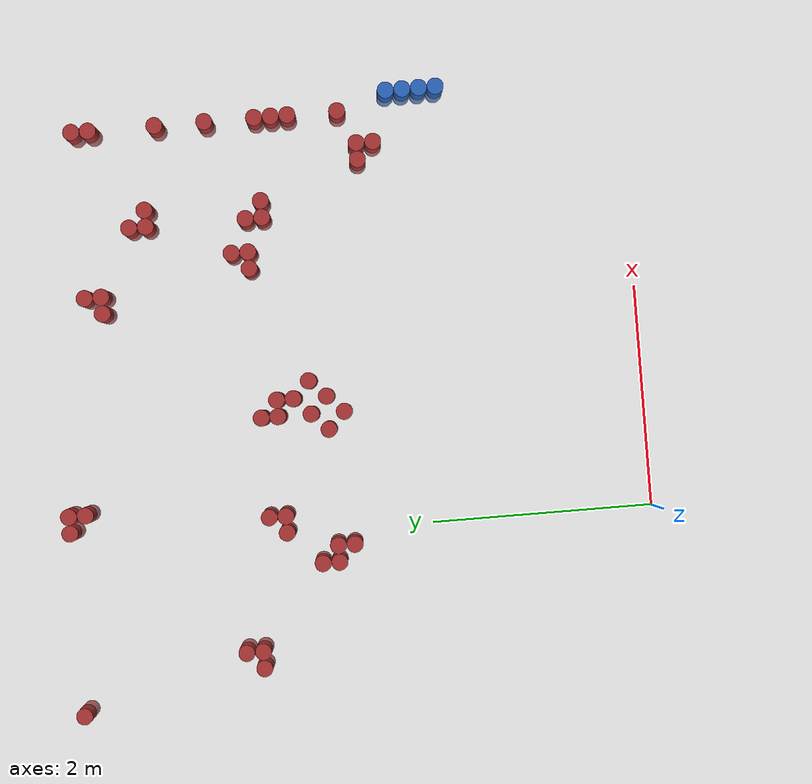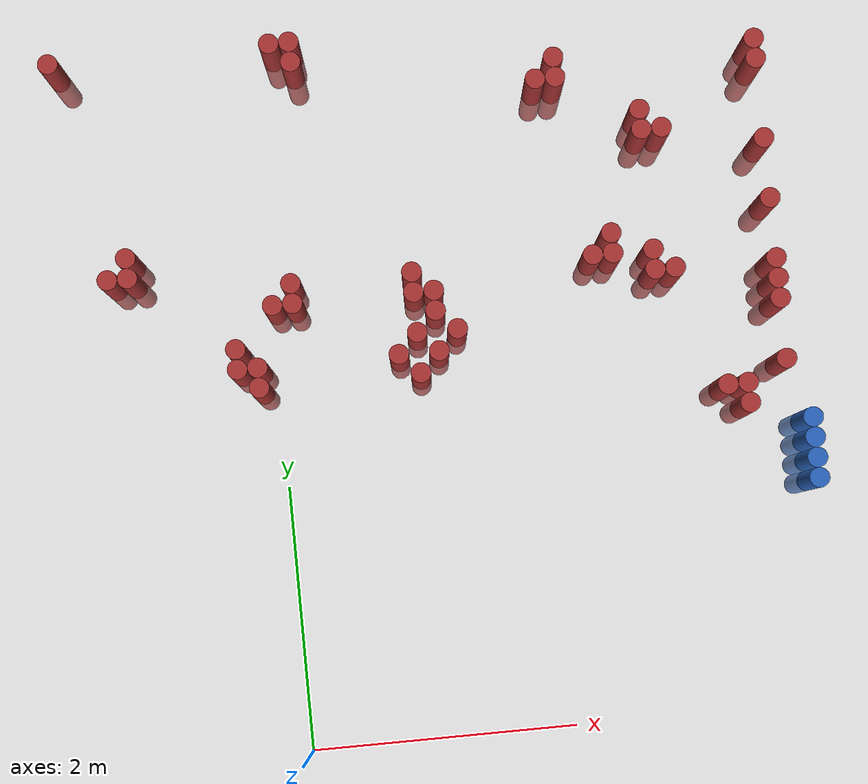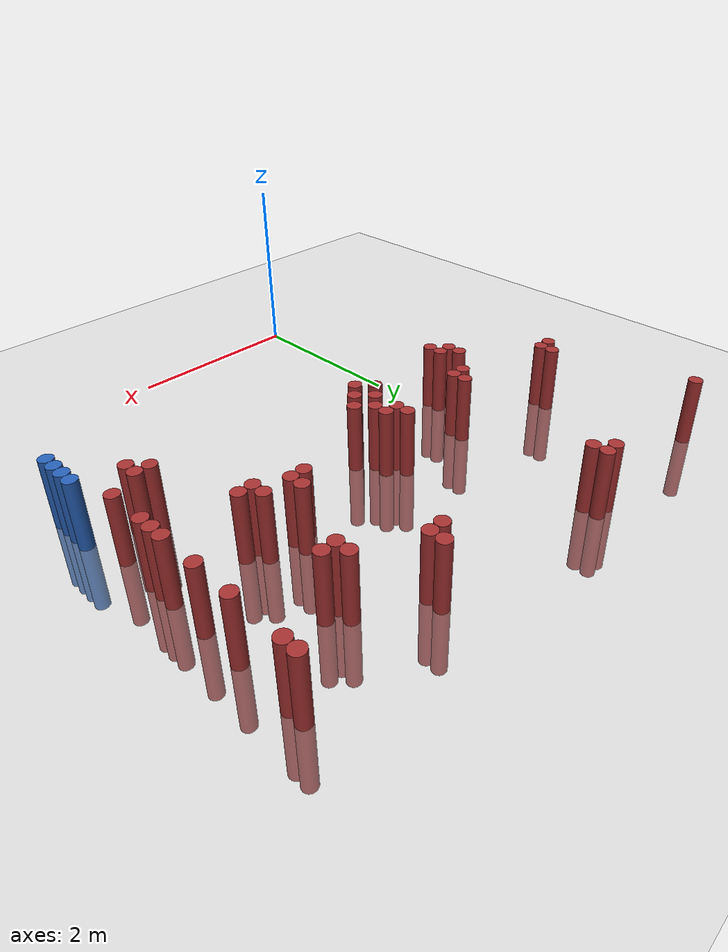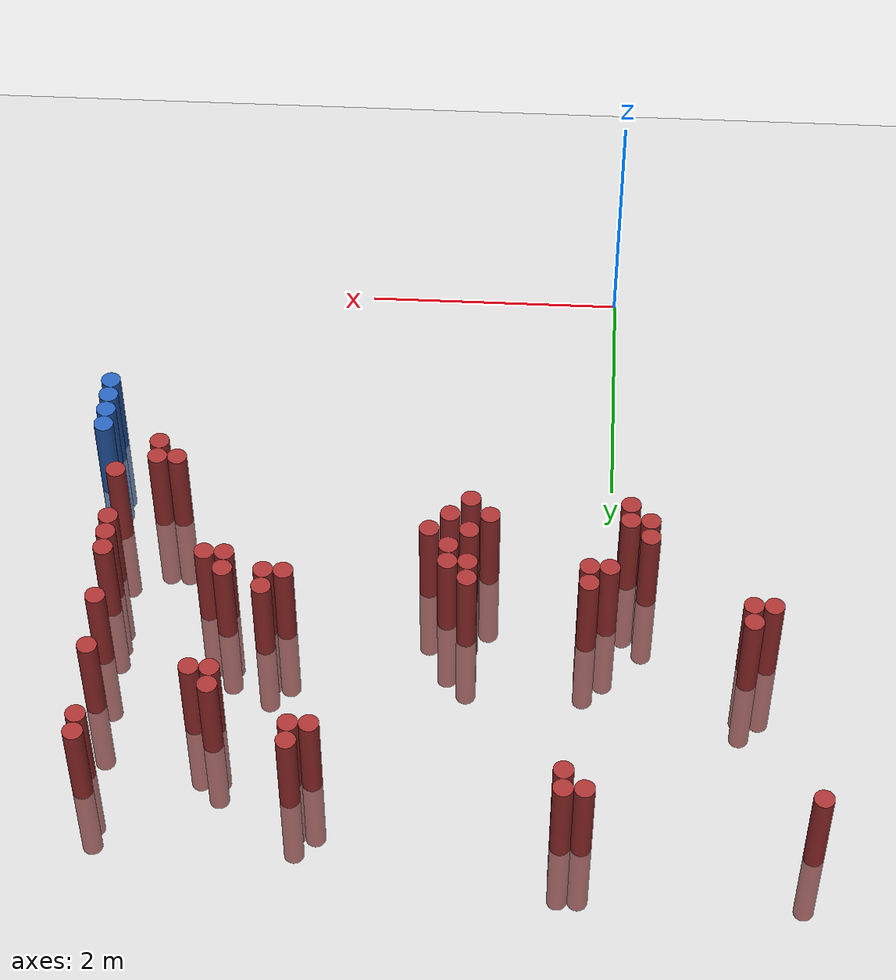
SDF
<sdf version="1.6">
 <world name="default">
  <model name="ground_plane">
   <static>1</static>
   <link name="link">
    <collision name="collision">
     <geometry><plane><normal>0 0 1</normal><size>100 100</size></plane></geometry>
     <surface><friction><ode><mu>100</mu><mu2>50</mu2></ode></friction></surface>
    </collision>
    <visual name="visual">
     <cast_shadows>0</cast_shadows>
     <geometry><plane><normal>0 0 1</normal><size>100 100</size></plane></geometry>
     <material>
      <script><uri>file://media/materials/scripts/gazebo.material</uri><name>Gazebo/Grey</name></script>
     </material>
    </visual>
   </link>
  </model>
  <model name="unit_cylinder_136">
   <static>1</static>
   <pose>3.925000 1.675000 0.000000 0.000000 0.000000 0.000000</pose>
   <link name="link">
    <inertial>
     <mass>1</mass>
     <inertia><ixx>0.145833</ixx><ixy>0</ixy><ixz>0</ixz><iyy>0.145833</iyy><iyz>0</iyz><izz>0.125</izz></inertia>
    </inertial>
    <collision name="collision">
     <geometry><cylinder><radius>0.075000</radius><length>1.5</length></cylinder></geometry>
    </collision>
    <visual name="visual">
     <geometry><cylinder><radius>0.075000</radius><length>1.5</length></cylinder></geometry>
     <material>
      <ambient>0.152000 0.379000 0.720000 1</ambient>
      <diffuse>0.152000 0.379000 0.720000 1</diffuse>
     </material>
     <material>
      <script><name>Gazebo/Grey</name><uri>file://media/materials/scripts/gazebo.material</uri></script>
     </material>
    </visual>
   </link>
  </model>
  <model name="unit_cylinder_138">
   <static>1</static>
   <pose>3.925000 1.825000 0.000000 0.000000 0.000000 0.000000</pose>
   <link name="link">
    <inertial>
     <mass>1</mass>
     <inertia><ixx>0.145833</ixx><ixy>0</ixy><ixz>0</ixz><iyy>0.145833</iyy><iyz>0</iyz><izz>0.125</izz></inertia>
    </inertial>
    <collision name="collision">
     <geometry><cylinder><radius>0.075000</radius><length>1.5</length></cylinder></geometry>
    </collision>
    <visual name="visual">
     <geometry><cylinder><radius>0.075000</radius><length>1.5</length></cylinder></geometry>
     <material>
      <ambient>0.152000 0.379000 0.720000 1</ambient>
      <diffuse>0.152000 0.379000 0.720000 1</diffuse>
     </material>
     <material>
      <script><name>Gazebo/Grey</name><uri>file://media/materials/scripts/gazebo.material</uri></script>
     </material>
    </visual>
   </link>
  </model>
  <model name="unit_cylinder_140">
   <static>1</static>
   <pose>3.925000 1.975000 0.000000 0.000000 0.000000 0.000000</pose>
   <link name="link">
    <inertial>
     <mass>1</mass>
     <inertia><ixx>0.145833</ixx><ixy>0</ixy><ixz>0</ixz><iyy>0.145833</iyy><iyz>0</iyz><izz>0.125</izz></inertia>
    </inertial>
    <collision name="collision">
     <geometry><cylinder><radius>0.075000</radius><length>1.5</length></cylinder></geometry>
    </collision>
    <visual name="visual">
     <geometry><cylinder><radius>0.075000</radius><length>1.5</length></cylinder></geometry>
     <material>
      <ambient>0.152000 0.379000 0.720000 1</ambient>
      <diffuse>0.152000 0.379000 0.720000 1</diffuse>
     </material>
     <material>
      <script><name>Gazebo/Grey</name><uri>file://media/materials/scripts/gazebo.material</uri></script>
     </material>
    </visual>
   </link>
  </model>
  <model name="unit_cylinder_142">
   <static>1</static>
   <pose>3.925000 2.125000 0.000000 0.000000 0.000000 0.000000</pose>
   <link name="link">
    <inertial>
     <mass>1</mass>
     <inertia><ixx>0.145833</ixx><ixy>0</ixy><ixz>0</ixz><iyy>0.145833</iyy><iyz>0</iyz><izz>0.125</izz></inertia>
    </inertial>
    <collision name="collision">
     <geometry><cylinder><radius>0.075000</radius><length>1.5</length></cylinder></geometry>
    </collision>
    <visual name="visual">
     <geometry><cylinder><radius>0.075000</radius><length>1.5</length></cylinder></geometry>
     <material>
      <ambient>0.152000 0.379000 0.720000 1</ambient>
      <diffuse>0.152000 0.379000 0.720000 1</diffuse>
     </material>
     <material>
      <script><name>Gazebo/Grey</name><uri>file://media/materials/scripts/gazebo.material</uri></script>
     </material>
    </visual>
   </link>
  </model>
  <model name="unit_cylinder_316">
   <static>1</static>
   <pose>-1.475000 5.275000 0.000000 0.000000 0.000000 0.000000</pose>
   <link name="link">
    <inertial>
     <mass>1</mass>
     <inertia><ixx>0.145833</ixx><ixy>0</ixy><ixz>0</ixz><iyy>0.145833</iyy><iyz>0</iyz><izz>0.125</izz></inertia>
    </inertial>
    <collision name="collision">
     <geometry><cylinder><radius>0.075000</radius><length>1.5</length></cylinder></geometry>
    </collision>
    <visual name="visual">
     <geometry><cylinder><radius>0.075000</radius><length>1.5</length></cylinder></geometry>
     <material>
      <ambient>0.648000 0.192000 0.192000 1</ambient>
      <diffuse>0.648000 0.192000 0.192000 1</diffuse>
     </material>
     <material>
      <script><name>Gazebo/Grey</name><uri>file://media/materials/scripts/gazebo.material</uri></script>
     </material>
    </visual>
   </link>
  </model>
  <model name="unit_cylinder_318">
   <static>1</static>
   <pose>-1.175000 3.625000 0.000000 0.000000 0.000000 0.000000</pose>
   <link name="link">
    <inertial>
     <mass>1</mass>
     <inertia><ixx>0.145833</ixx><ixy>0</ixy><ixz>0</ixz><iyy>0.145833</iyy><iyz>0</iyz><izz>0.125</izz></inertia>
    </inertial>
    <collision name="collision">
     <geometry><cylinder><radius>0.075000</radius><length>1.5</length></cylinder></geometry>
    </collision>
    <visual name="visual">
     <geometry><cylinder><radius>0.075000</radius><length>1.5</length></cylinder></geometry>
     <material>
      <ambient>0.648000 0.192000 0.192000 1</ambient>
      <diffuse>0.648000 0.192000 0.192000 1</diffuse>
     </material>
     <material>
      <script><name>Gazebo/Grey</name><uri>file://media/materials/scripts/gazebo.material</uri></script>
     </material>
    </visual>
   </link>
  </model>
  <model name="unit_cylinder_320">
   <static>1</static>
   <pose>-1.025000 3.625000 0.000000 0.000000 0.000000 0.000000</pose>
   <link name="link">
    <inertial>
     <mass>1</mass>
     <inertia><ixx>0.145833</ixx><ixy>0</ixy><ixz>0</ixz><iyy>0.145833</iyy><iyz>0</iyz><izz>0.125</izz></inertia>
    </inertial>
    <collision name="collision">
     <geometry><cylinder><radius>0.075000</radius><length>1.5</length></cylinder></geometry>
    </collision>
    <visual name="visual">
     <geometry><cylinder><radius>0.075000</radius><length>1.5</length></cylinder></geometry>
     <material>
      <ambient>0.648000 0.192000 0.192000 1</ambient>
      <diffuse>0.648000 0.192000 0.192000 1</diffuse>
     </material>
     <material>
      <script><name>Gazebo/Grey</name><uri>file://media/materials/scripts/gazebo.material</uri></script>
     </material>
    </visual>
   </link>
  </model>
  <model name="unit_cylinder_321">
   <static>1</static>
   <pose>-1.025000 3.775000 0.000000 0.000000 0.000000 0.000000</pose>
   <link name="link">
    <inertial>
     <mass>1</mass>
     <inertia><ixx>0.145833</ixx><ixy>0</ixy><ixz>0</ixz><iyy>0.145833</iyy><iyz>0</iyz><izz>0.125</izz></inertia>
    </inertial>
    <collision name="collision">
     <geometry><cylinder><radius>0.075000</radius><length>1.5</length></cylinder></geometry>
    </collision>
    <visual name="visual">
     <geometry><cylinder><radius>0.075000</radius><length>1.5</length></cylinder></geometry>
     <material>
      <ambient>0.648000 0.192000 0.192000 1</ambient>
      <diffuse>0.648000 0.192000 0.192000 1</diffuse>
     </material>
     <material>
      <script><name>Gazebo/Grey</name><uri>file://media/materials/scripts/gazebo.material</uri></script>
     </material>
    </visual>
   </link>
  </model>
  <model name="unit_cylinder_333">
   <static>1</static>
   <pose>-0.275000 2.875000 0.000000 0.000000 0.000000 0.000000</pose>
   <link name="link">
    <inertial>
     <mass>1</mass>
     <inertia><ixx>0.145833</ixx><ixy>0</ixy><ixz>0</ixz><iyy>0.145833</iyy><iyz>0</iyz><izz>0.125</izz></inertia>
    </inertial>
    <collision name="collision">
     <geometry><cylinder><radius>0.075000</radius><length>1.5</length></cylinder></geometry>
    </collision>
    <visual name="visual">
     <geometry><cylinder><radius>0.075000</radius><length>1.5</length></cylinder></geometry>
     <material>
      <ambient>0.648000 0.192000 0.192000 1</ambient>
      <diffuse>0.648000 0.192000 0.192000 1</diffuse>
     </material>
     <material>
      <script><name>Gazebo/Grey</name><uri>file://media/materials/scripts/gazebo.material</uri></script>
     </material>
    </visual>
   </link>
  </model>
  <model name="unit_cylinder_334">
   <static>1</static>
   <pose>-0.275000 3.025000 0.000000 0.000000 0.000000 0.000000</pose>
   <link name="link">
    <inertial>
     <mass>1</mass>
     <inertia><ixx>0.145833</ixx><ixy>0</ixy><ixz>0</ixz><iyy>0.145833</iyy><iyz>0</iyz><izz>0.125</izz></inertia>
    </inertial>
    <collision name="collision">
     <geometry><cylinder><radius>0.075000</radius><length>1.5</length></cylinder></geometry>
    </collision>
    <visual name="visual">
     <geometry><cylinder><radius>0.075000</radius><length>1.5</length></cylinder></geometry>
     <material>
      <ambient>0.648000 0.192000 0.192000 1</ambient>
      <diffuse>0.648000 0.192000 0.192000 1</diffuse>
     </material>
     <material>
      <script><name>Gazebo/Grey</name><uri>file://media/materials/scripts/gazebo.material</uri></script>
     </material>
    </visual>
   </link>
  </model>
  <model name="unit_cylinder_336">
   <static>1</static>
   <pose>-0.125000 2.725000 0.000000 0.000000 0.000000 0.000000</pose>
   <link name="link">
    <inertial>
     <mass>1</mass>
     <inertia><ixx>0.145833</ixx><ixy>0</ixy><ixz>0</ixz><iyy>0.145833</iyy><iyz>0</iyz><izz>0.125</izz></inertia>
    </inertial>
    <collision name="collision">
     <geometry><cylinder><radius>0.075000</radius><length>1.5</length></cylinder></geometry>
    </collision>
    <visual name="visual">
     <geometry><cylinder><radius>0.075000</radius><length>1.5</length></cylinder></geometry>
     <material>
      <ambient>0.648000 0.192000 0.192000 1</ambient>
      <diffuse>0.648000 0.192000 0.192000 1</diffuse>
     </material>
     <material>
      <script><name>Gazebo/Grey</name><uri>file://media/materials/scripts/gazebo.material</uri></script>
     </material>
    </visual>
   </link>
  </model>
  <model name="unit_cylinder_337">
   <static>1</static>
   <pose>-0.125000 2.875000 0.000000 0.000000 0.000000 0.000000</pose>
   <link name="link">
    <inertial>
     <mass>1</mass>
     <inertia><ixx>0.145833</ixx><ixy>0</ixy><ixz>0</ixz><iyy>0.145833</iyy><iyz>0</iyz><izz>0.125</izz></inertia>
    </inertial>
    <collision name="collision">
     <geometry><cylinder><radius>0.075000</radius><length>1.5</length></cylinder></geometry>
    </collision>
    <visual name="visual">
     <geometry><cylinder><radius>0.075000</radius><length>1.5</length></cylinder></geometry>
     <material>
      <ambient>0.648000 0.192000 0.192000 1</ambient>
      <diffuse>0.648000 0.192000 0.192000 1</diffuse>
     </material>
     <material>
      <script><name>Gazebo/Grey</name><uri>file://media/materials/scripts/gazebo.material</uri></script>
     </material>
    </visual>
   </link>
  </model>
  <model name="unit_cylinder_341">
   <static>1</static>
   <pose>0.025000 3.325000 0.000000 0.000000 0.000000 0.000000</pose>
   <link name="link">
    <inertial>
     <mass>1</mass>
     <inertia><ixx>0.145833</ixx><ixy>0</ixy><ixz>0</ixz><iyy>0.145833</iyy><iyz>0</iyz><izz>0.125</izz></inertia>
    </inertial>
    <collision name="collision">
     <geometry><cylinder><radius>0.075000</radius><length>1.5</length></cylinder></geometry>
    </collision>
    <visual name="visual">
     <geometry><cylinder><radius>0.075000</radius><length>1.5</length></cylinder></geometry>
     <material>
      <ambient>0.648000 0.192000 0.192000 1</ambient>
      <diffuse>0.648000 0.192000 0.192000 1</diffuse>
     </material>
     <material>
      <script><name>Gazebo/Grey</name><uri>file://media/materials/scripts/gazebo.material</uri></script>
     </material>
    </visual>
   </link>
  </model>
  <model name="unit_cylinder_345">
   <static>1</static>
   <pose>0.175000 3.325000 0.000000 0.000000 0.000000 0.000000</pose>
   <link name="link">
    <inertial>
     <mass>1</mass>
     <inertia><ixx>0.145833</ixx><ixy>0</ixy><ixz>0</ixz><iyy>0.145833</iyy><iyz>0</iyz><izz>0.125</izz></inertia>
    </inertial>
    <collision name="collision">
     <geometry><cylinder><radius>0.075000</radius><length>1.5</length></cylinder></geometry>
    </collision>
    <visual name="visual">
     <geometry><cylinder><radius>0.075000</radius><length>1.5</length></cylinder></geometry>
     <material>
      <ambient>0.648000 0.192000 0.192000 1</ambient>
      <diffuse>0.648000 0.192000 0.192000 1</diffuse>
     </material>
     <material>
      <script><name>Gazebo/Grey</name><uri>file://media/materials/scripts/gazebo.material</uri></script>
     </material>
    </visual>
   </link>
  </model>
  <model name="unit_cylinder_346">
   <static>1</static>
   <pose>0.175000 3.475000 0.000000 0.000000 0.000000 0.000000</pose>
   <link name="link">
    <inertial>
     <mass>1</mass>
     <inertia><ixx>0.145833</ixx><ixy>0</ixy><ixz>0</ixz><iyy>0.145833</iyy><iyz>0</iyz><izz>0.125</izz></inertia>
    </inertial>
    <collision name="collision">
     <geometry><cylinder><radius>0.075000</radius><length>1.5</length></cylinder></geometry>
    </collision>
    <visual name="visual">
     <geometry><cylinder><radius>0.075000</radius><length>1.5</length></cylinder></geometry>
     <material>
      <ambient>0.648000 0.192000 0.192000 1</ambient>
      <diffuse>0.648000 0.192000 0.192000 1</diffuse>
     </material>
     <material>
      <script><name>Gazebo/Grey</name><uri>file://media/materials/scripts/gazebo.material</uri></script>
     </material>
    </visual>
   </link>
  </model>
  <model name="unit_cylinder_347">
   <static>1</static>
   <pose>0.175000 5.275000 0.000000 0.000000 0.000000 0.000000</pose>
   <link name="link">
    <inertial>
     <mass>1</mass>
     <inertia><ixx>0.145833</ixx><ixy>0</ixy><ixz>0</ixz><iyy>0.145833</iyy><iyz>0</iyz><izz>0.125</izz></inertia>
    </inertial>
    <collision name="collision">
     <geometry><cylinder><radius>0.075000</radius><length>1.5</length></cylinder></geometry>
    </collision>
    <visual name="visual">
     <geometry><cylinder><radius>0.075000</radius><length>1.5</length></cylinder></geometry>
     <material>
      <ambient>0.648000 0.192000 0.192000 1</ambient>
      <diffuse>0.648000 0.192000 0.192000 1</diffuse>
     </material>
     <material>
      <script><name>Gazebo/Grey</name><uri>file://media/materials/scripts/gazebo.material</uri></script>
     </material>
    </visual>
   </link>
  </model>
  <model name="unit_cylinder_351">
   <static>1</static>
   <pose>0.325000 5.125000 0.000000 0.000000 0.000000 0.000000</pose>
   <link name="link">
    <inertial>
     <mass>1</mass>
     <inertia><ixx>0.145833</ixx><ixy>0</ixy><ixz>0</ixz><iyy>0.145833</iyy><iyz>0</iyz><izz>0.125</izz></inertia>
    </inertial>
    <collision name="collision">
     <geometry><cylinder><radius>0.075000</radius><length>1.5</length></cylinder></geometry>
    </collision>
    <visual name="visual">
     <geometry><cylinder><radius>0.075000</radius><length>1.5</length></cylinder></geometry>
     <material>
      <ambient>0.648000 0.192000 0.192000 1</ambient>
      <diffuse>0.648000 0.192000 0.192000 1</diffuse>
     </material>
     <material>
      <script><name>Gazebo/Grey</name><uri>file://media/materials/scripts/gazebo.material</uri></script>
     </material>
    </visual>
   </link>
  </model>
  <model name="unit_cylinder_352">
   <static>1</static>
   <pose>0.325000 5.275000 0.000000 0.000000 0.000000 0.000000</pose>
   <link name="link">
    <inertial>
     <mass>1</mass>
     <inertia><ixx>0.145833</ixx><ixy>0</ixy><ixz>0</ixz><iyy>0.145833</iyy><iyz>0</iyz><izz>0.125</izz></inertia>
    </inertial>
    <collision name="collision">
     <geometry><cylinder><radius>0.075000</radius><length>1.5</length></cylinder></geometry>
    </collision>
    <visual name="visual">
     <geometry><cylinder><radius>0.075000</radius><length>1.5</length></cylinder></geometry>
     <material>
      <ambient>0.648000 0.192000 0.192000 1</ambient>
      <diffuse>0.648000 0.192000 0.192000 1</diffuse>
     </material>
     <material>
      <script><name>Gazebo/Grey</name><uri>file://media/materials/scripts/gazebo.material</uri></script>
     </material>
    </visual>
   </link>
  </model>
  <model name="unit_cylinder_360">
   <static>1</static>
   <pose>0.925000 2.875000 0.000000 0.000000 0.000000 0.000000</pose>
   <link name="link">
    <inertial>
     <mass>1</mass>
     <inertia><ixx>0.145833</ixx><ixy>0</ixy><ixz>0</ixz><iyy>0.145833</iyy><iyz>0</iyz><izz>0.125</izz></inertia>
    </inertial>
    <collision name="collision">
     <geometry><cylinder><radius>0.075000</radius><length>1.5</length></cylinder></geometry>
    </collision>
    <visual name="visual">
     <geometry><cylinder><radius>0.075000</radius><length>1.5</length></cylinder></geometry>
     <material>
      <ambient>0.648000 0.192000 0.192000 1</ambient>
      <diffuse>0.648000 0.192000 0.192000 1</diffuse>
     </material>
     <material>
      <script><name>Gazebo/Grey</name><uri>file://media/materials/scripts/gazebo.material</uri></script>
     </material>
    </visual>
   </link>
  </model>
  <model name="unit_cylinder_363">
   <static>1</static>
   <pose>1.075000 2.725000 0.000000 0.000000 0.000000 0.000000</pose>
   <link name="link">
    <inertial>
     <mass>1</mass>
     <inertia><ixx>0.145833</ixx><ixy>0</ixy><ixz>0</ixz><iyy>0.145833</iyy><iyz>0</iyz><izz>0.125</izz></inertia>
    </inertial>
    <collision name="collision">
     <geometry><cylinder><radius>0.075000</radius><length>1.5</length></cylinder></geometry>
    </collision>
    <visual name="visual">
     <geometry><cylinder><radius>0.075000</radius><length>1.5</length></cylinder></geometry>
     <material>
      <ambient>0.648000 0.192000 0.192000 1</ambient>
      <diffuse>0.648000 0.192000 0.192000 1</diffuse>
     </material>
     <material>
      <script><name>Gazebo/Grey</name><uri>file://media/materials/scripts/gazebo.material</uri></script>
     </material>
    </visual>
   </link>
  </model>
  <model name="unit_cylinder_364">
   <static>1</static>
   <pose>1.075000 3.025000 0.000000 0.000000 0.000000 0.000000</pose>
   <link name="link">
    <inertial>
     <mass>1</mass>
     <inertia><ixx>0.145833</ixx><ixy>0</ixy><ixz>0</ixz><iyy>0.145833</iyy><iyz>0</iyz><izz>0.125</izz></inertia>
    </inertial>
    <collision name="collision">
     <geometry><cylinder><radius>0.075000</radius><length>1.5</length></cylinder></geometry>
    </collision>
    <visual name="visual">
     <geometry><cylinder><radius>0.075000</radius><length>1.5</length></cylinder></geometry>
     <material>
      <ambient>0.648000 0.192000 0.192000 1</ambient>
      <diffuse>0.648000 0.192000 0.192000 1</diffuse>
     </material>
     <material>
      <script><name>Gazebo/Grey</name><uri>file://media/materials/scripts/gazebo.material</uri></script>
     </material>
    </visual>
   </link>
  </model>
  <model name="unit_cylinder_365">
   <static>1</static>
   <pose>1.075000 3.325000 0.000000 0.000000 0.000000 0.000000</pose>
   <link name="link">
    <inertial>
     <mass>1</mass>
     <inertia><ixx>0.145833</ixx><ixy>0</ixy><ixz>0</ixz><iyy>0.145833</iyy><iyz>0</iyz><izz>0.125</izz></inertia>
    </inertial>
    <collision name="collision">
     <geometry><cylinder><radius>0.075000</radius><length>1.5</length></cylinder></geometry>
    </collision>
    <visual name="visual">
     <geometry><cylinder><radius>0.075000</radius><length>1.5</length></cylinder></geometry>
     <material>
      <ambient>0.648000 0.192000 0.192000 1</ambient>
      <diffuse>0.648000 0.192000 0.192000 1</diffuse>
     </material>
     <material>
      <script><name>Gazebo/Grey</name><uri>file://media/materials/scripts/gazebo.material</uri></script>
     </material>
    </visual>
   </link>
  </model>
  <model name="unit_cylinder_366">
   <static>1</static>
   <pose>1.075000 3.475000 0.000000 0.000000 0.000000 0.000000</pose>
   <link name="link">
    <inertial>
     <mass>1</mass>
     <inertia><ixx>0.145833</ixx><ixy>0</ixy><ixz>0</ixz><iyy>0.145833</iyy><iyz>0</iyz><izz>0.125</izz></inertia>
    </inertial>
    <collision name="collision">
     <geometry><cylinder><radius>0.075000</radius><length>1.5</length></cylinder></geometry>
    </collision>
    <visual name="visual">
     <geometry><cylinder><radius>0.075000</radius><length>1.5</length></cylinder></geometry>
     <material>
      <ambient>0.648000 0.192000 0.192000 1</ambient>
      <diffuse>0.648000 0.192000 0.192000 1</diffuse>
     </material>
     <material>
      <script><name>Gazebo/Grey</name><uri>file://media/materials/scripts/gazebo.material</uri></script>
     </material>
    </visual>
   </link>
  </model>
  <model name="unit_cylinder_367">
   <static>1</static>
   <pose>1.225000 2.875000 0.000000 0.000000 0.000000 0.000000</pose>
   <link name="link">
    <inertial>
     <mass>1</mass>
     <inertia><ixx>0.145833</ixx><ixy>0</ixy><ixz>0</ixz><iyy>0.145833</iyy><iyz>0</iyz><izz>0.125</izz></inertia>
    </inertial>
    <collision name="collision">
     <geometry><cylinder><radius>0.075000</radius><length>1.5</length></cylinder></geometry>
    </collision>
    <visual name="visual">
     <geometry><cylinder><radius>0.075000</radius><length>1.5</length></cylinder></geometry>
     <material>
      <ambient>0.648000 0.192000 0.192000 1</ambient>
      <diffuse>0.648000 0.192000 0.192000 1</diffuse>
     </material>
     <material>
      <script><name>Gazebo/Grey</name><uri>file://media/materials/scripts/gazebo.material</uri></script>
     </material>
    </visual>
   </link>
  </model>
  <model name="unit_cylinder_368">
   <static>1</static>
   <pose>1.225000 3.175000 0.000000 0.000000 0.000000 0.000000</pose>
   <link name="link">
    <inertial>
     <mass>1</mass>
     <inertia><ixx>0.145833</ixx><ixy>0</ixy><ixz>0</ixz><iyy>0.145833</iyy><iyz>0</iyz><izz>0.125</izz></inertia>
    </inertial>
    <collision name="collision">
     <geometry><cylinder><radius>0.075000</radius><length>1.5</length></cylinder></geometry>
    </collision>
    <visual name="visual">
     <geometry><cylinder><radius>0.075000</radius><length>1.5</length></cylinder></geometry>
     <material>
      <ambient>0.648000 0.192000 0.192000 1</ambient>
      <diffuse>0.648000 0.192000 0.192000 1</diffuse>
     </material>
     <material>
      <script><name>Gazebo/Grey</name><uri>file://media/materials/scripts/gazebo.material</uri></script>
     </material>
    </visual>
   </link>
  </model>
  <model name="unit_cylinder_369">
   <static>1</static>
   <pose>1.225000 3.325000 0.000000 0.000000 0.000000 0.000000</pose>
   <link name="link">
    <inertial>
     <mass>1</mass>
     <inertia><ixx>0.145833</ixx><ixy>0</ixy><ixz>0</ixz><iyy>0.145833</iyy><iyz>0</iyz><izz>0.125</izz></inertia>
    </inertial>
    <collision name="collision">
     <geometry><cylinder><radius>0.075000</radius><length>1.5</length></cylinder></geometry>
    </collision>
    <visual name="visual">
     <geometry><cylinder><radius>0.075000</radius><length>1.5</length></cylinder></geometry>
     <material>
      <ambient>0.648000 0.192000 0.192000 1</ambient>
      <diffuse>0.648000 0.192000 0.192000 1</diffuse>
     </material>
     <material>
      <script><name>Gazebo/Grey</name><uri>file://media/materials/scripts/gazebo.material</uri></script>
     </material>
    </visual>
   </link>
  </model>
  <model name="unit_cylinder_370">
   <static>1</static>
   <pose>1.375000 3.025000 0.000000 0.000000 0.000000 0.000000</pose>
   <link name="link">
    <inertial>
     <mass>1</mass>
     <inertia><ixx>0.145833</ixx><ixy>0</ixy><ixz>0</ixz><iyy>0.145833</iyy><iyz>0</iyz><izz>0.125</izz></inertia>
    </inertial>
    <collision name="collision">
     <geometry><cylinder><radius>0.075000</radius><length>1.5</length></cylinder></geometry>
    </collision>
    <visual name="visual">
     <geometry><cylinder><radius>0.075000</radius><length>1.5</length></cylinder></geometry>
     <material>
      <ambient>0.648000 0.192000 0.192000 1</ambient>
      <diffuse>0.648000 0.192000 0.192000 1</diffuse>
     </material>
     <material>
      <script><name>Gazebo/Grey</name><uri>file://media/materials/scripts/gazebo.material</uri></script>
     </material>
    </visual>
   </link>
  </model>
  <model name="unit_cylinder_371">
   <static>1</static>
   <pose>2.125000 4.825000 0.000000 0.000000 0.000000 0.000000</pose>
   <link name="link">
    <inertial>
     <mass>1</mass>
     <inertia><ixx>0.145833</ixx><ixy>0</ixy><ixz>0</ixz><iyy>0.145833</iyy><iyz>0</iyz><izz>0.125</izz></inertia>
    </inertial>
    <collision name="collision">
     <geometry><cylinder><radius>0.075000</radius><length>1.5</length></cylinder></geometry>
    </collision>
    <visual name="visual">
     <geometry><cylinder><radius>0.075000</radius><length>1.5</length></cylinder></geometry>
     <material>
      <ambient>0.648000 0.192000 0.192000 1</ambient>
      <diffuse>0.648000 0.192000 0.192000 1</diffuse>
     </material>
     <material>
      <script><name>Gazebo/Grey</name><uri>file://media/materials/scripts/gazebo.material</uri></script>
     </material>
    </visual>
   </link>
  </model>
  <model name="unit_cylinder_373">
   <static>1</static>
   <pose>2.275000 4.825000 0.000000 0.000000 0.000000 0.000000</pose>
   <link name="link">
    <inertial>
     <mass>1</mass>
     <inertia><ixx>0.145833</ixx><ixy>0</ixy><ixz>0</ixz><iyy>0.145833</iyy><iyz>0</iyz><izz>0.125</izz></inertia>
    </inertial>
    <collision name="collision">
     <geometry><cylinder><radius>0.075000</radius><length>1.5</length></cylinder></geometry>
    </collision>
    <visual name="visual">
     <geometry><cylinder><radius>0.075000</radius><length>1.5</length></cylinder></geometry>
     <material>
      <ambient>0.648000 0.192000 0.192000 1</ambient>
      <diffuse>0.648000 0.192000 0.192000 1</diffuse>
     </material>
     <material>
      <script><name>Gazebo/Grey</name><uri>file://media/materials/scripts/gazebo.material</uri></script>
     </material>
    </visual>
   </link>
  </model>
  <model name="unit_cylinder_374">
   <static>1</static>
   <pose>2.275000 4.975000 0.000000 0.000000 0.000000 0.000000</pose>
   <link name="link">
    <inertial>
     <mass>1</mass>
     <inertia><ixx>0.145833</ixx><ixy>0</ixy><ixz>0</ixz><iyy>0.145833</iyy><iyz>0</iyz><izz>0.125</izz></inertia>
    </inertial>
    <collision name="collision">
     <geometry><cylinder><radius>0.075000</radius><length>1.5</length></cylinder></geometry>
    </collision>
    <visual name="visual">
     <geometry><cylinder><radius>0.075000</radius><length>1.5</length></cylinder></geometry>
     <material>
      <ambient>0.648000 0.192000 0.192000 1</ambient>
      <diffuse>0.648000 0.192000 0.192000 1</diffuse>
     </material>
     <material>
      <script><name>Gazebo/Grey</name><uri>file://media/materials/scripts/gazebo.material</uri></script>
     </material>
    </visual>
   </link>
  </model>
  <model name="unit_cylinder_377">
   <static>1</static>
   <pose>2.425000 3.475000 0.000000 0.000000 0.000000 0.000000</pose>
   <link name="link">
    <inertial>
     <mass>1</mass>
     <inertia><ixx>0.145833</ixx><ixy>0</ixy><ixz>0</ixz><iyy>0.145833</iyy><iyz>0</iyz><izz>0.125</izz></inertia>
    </inertial>
    <collision name="collision">
     <geometry><cylinder><radius>0.075000</radius><length>1.5</length></cylinder></geometry>
    </collision>
    <visual name="visual">
     <geometry><cylinder><radius>0.075000</radius><length>1.5</length></cylinder></geometry>
     <material>
      <ambient>0.648000 0.192000 0.192000 1</ambient>
      <diffuse>0.648000 0.192000 0.192000 1</diffuse>
     </material>
     <material>
      <script><name>Gazebo/Grey</name><uri>file://media/materials/scripts/gazebo.material</uri></script>
     </material>
    </visual>
   </link>
  </model>
  <model name="unit_cylinder_381">
   <static>1</static>
   <pose>2.575000 3.475000 0.000000 0.000000 0.000000 0.000000</pose>
   <link name="link">
    <inertial>
     <mass>1</mass>
     <inertia><ixx>0.145833</ixx><ixy>0</ixy><ixz>0</ixz><iyy>0.145833</iyy><iyz>0</iyz><izz>0.125</izz></inertia>
    </inertial>
    <collision name="collision">
     <geometry><cylinder><radius>0.075000</radius><length>1.5</length></cylinder></geometry>
    </collision>
    <visual name="visual">
     <geometry><cylinder><radius>0.075000</radius><length>1.5</length></cylinder></geometry>
     <material>
      <ambient>0.648000 0.192000 0.192000 1</ambient>
      <diffuse>0.648000 0.192000 0.192000 1</diffuse>
     </material>
     <material>
      <script><name>Gazebo/Grey</name><uri>file://media/materials/scripts/gazebo.material</uri></script>
     </material>
    </visual>
   </link>
  </model>
  <model name="unit_cylinder_382">
   <static>1</static>
   <pose>2.575000 3.625000 0.000000 0.000000 0.000000 0.000000</pose>
   <link name="link">
    <inertial>
     <mass>1</mass>
     <inertia><ixx>0.145833</ixx><ixy>0</ixy><ixz>0</ixz><iyy>0.145833</iyy><iyz>0</iyz><izz>0.125</izz></inertia>
    </inertial>
    <collision name="collision">
     <geometry><cylinder><radius>0.075000</radius><length>1.5</length></cylinder></geometry>
    </collision>
    <visual name="visual">
     <geometry><cylinder><radius>0.075000</radius><length>1.5</length></cylinder></geometry>
     <material>
      <ambient>0.648000 0.192000 0.192000 1</ambient>
      <diffuse>0.648000 0.192000 0.192000 1</diffuse>
     </material>
     <material>
      <script><name>Gazebo/Grey</name><uri>file://media/materials/scripts/gazebo.material</uri></script>
     </material>
    </visual>
   </link>
  </model>
  <model name="unit_cylinder_393">
   <static>1</static>
   <pose>2.875000 3.325000 0.000000 0.000000 0.000000 0.000000</pose>
   <link name="link">
    <inertial>
     <mass>1</mass>
     <inertia><ixx>0.145833</ixx><ixy>0</ixy><ixz>0</ixz><iyy>0.145833</iyy><iyz>0</iyz><izz>0.125</izz></inertia>
    </inertial>
    <collision name="collision">
     <geometry><cylinder><radius>0.075000</radius><length>1.5</length></cylinder></geometry>
    </collision>
    <visual name="visual">
     <geometry><cylinder><radius>0.075000</radius><length>1.5</length></cylinder></geometry>
     <material>
      <ambient>0.648000 0.192000 0.192000 1</ambient>
      <diffuse>0.648000 0.192000 0.192000 1</diffuse>
     </material>
     <material>
      <script><name>Gazebo/Grey</name><uri>file://media/materials/scripts/gazebo.material</uri></script>
     </material>
    </visual>
   </link>
  </model>
  <model name="unit_cylinder_394">
   <static>1</static>
   <pose>2.875000 3.475000 0.000000 0.000000 0.000000 0.000000</pose>
   <link name="link">
    <inertial>
     <mass>1</mass>
     <inertia><ixx>0.145833</ixx><ixy>0</ixy><ixz>0</ixz><iyy>0.145833</iyy><iyz>0</iyz><izz>0.125</izz></inertia>
    </inertial>
    <collision name="collision">
     <geometry><cylinder><radius>0.075000</radius><length>1.5</length></cylinder></geometry>
    </collision>
    <visual name="visual">
     <geometry><cylinder><radius>0.075000</radius><length>1.5</length></cylinder></geometry>
     <material>
      <ambient>0.648000 0.192000 0.192000 1</ambient>
      <diffuse>0.648000 0.192000 0.192000 1</diffuse>
     </material>
     <material>
      <script><name>Gazebo/Grey</name><uri>file://media/materials/scripts/gazebo.material</uri></script>
     </material>
    </visual>
   </link>
  </model>
  <model name="unit_cylinder_395">
   <static>1</static>
   <pose>2.875000 4.375000 0.000000 0.000000 0.000000 0.000000</pose>
   <link name="link">
    <inertial>
     <mass>1</mass>
     <inertia><ixx>0.145833</ixx><ixy>0</ixy><ixz>0</ixz><iyy>0.145833</iyy><iyz>0</iyz><izz>0.125</izz></inertia>
    </inertial>
    <collision name="collision">
     <geometry><cylinder><radius>0.075000</radius><length>1.5</length></cylinder></geometry>
    </collision>
    <visual name="visual">
     <geometry><cylinder><radius>0.075000</radius><length>1.5</length></cylinder></geometry>
     <material>
      <ambient>0.648000 0.192000 0.192000 1</ambient>
      <diffuse>0.648000 0.192000 0.192000 1</diffuse>
     </material>
     <material>
      <script><name>Gazebo/Grey</name><uri>file://media/materials/scripts/gazebo.material</uri></script>
     </material>
    </visual>
   </link>
  </model>
  <model name="unit_cylinder_396">
   <static>1</static>
   <pose>2.875000 4.525000 0.000000 0.000000 0.000000 0.000000</pose>
   <link name="link">
    <inertial>
     <mass>1</mass>
     <inertia><ixx>0.145833</ixx><ixy>0</ixy><ixz>0</ixz><iyy>0.145833</iyy><iyz>0</iyz><izz>0.125</izz></inertia>
    </inertial>
    <collision name="collision">
     <geometry><cylinder><radius>0.075000</radius><length>1.5</length></cylinder></geometry>
    </collision>
    <visual name="visual">
     <geometry><cylinder><radius>0.075000</radius><length>1.5</length></cylinder></geometry>
     <material>
      <ambient>0.648000 0.192000 0.192000 1</ambient>
      <diffuse>0.648000 0.192000 0.192000 1</diffuse>
     </material>
     <material>
      <script><name>Gazebo/Grey</name><uri>file://media/materials/scripts/gazebo.material</uri></script>
     </material>
    </visual>
   </link>
  </model>
  <model name="unit_cylinder_399">
   <static>1</static>
   <pose>3.025000 3.325000 0.000000 0.000000 0.000000 0.000000</pose>
   <link name="link">
    <inertial>
     <mass>1</mass>
     <inertia><ixx>0.145833</ixx><ixy>0</ixy><ixz>0</ixz><iyy>0.145833</iyy><iyz>0</iyz><izz>0.125</izz></inertia>
    </inertial>
    <collision name="collision">
     <geometry><cylinder><radius>0.075000</radius><length>1.5</length></cylinder></geometry>
    </collision>
    <visual name="visual">
     <geometry><cylinder><radius>0.075000</radius><length>1.5</length></cylinder></geometry>
     <material>
      <ambient>0.648000 0.192000 0.192000 1</ambient>
      <diffuse>0.648000 0.192000 0.192000 1</diffuse>
     </material>
     <material>
      <script><name>Gazebo/Grey</name><uri>file://media/materials/scripts/gazebo.material</uri></script>
     </material>
    </visual>
   </link>
  </model>
  <model name="unit_cylinder_400">
   <static>1</static>
   <pose>3.025000 4.375000 0.000000 0.000000 0.000000 0.000000</pose>
   <link name="link">
    <inertial>
     <mass>1</mass>
     <inertia><ixx>0.145833</ixx><ixy>0</ixy><ixz>0</ixz><iyy>0.145833</iyy><iyz>0</iyz><izz>0.125</izz></inertia>
    </inertial>
    <collision name="collision">
     <geometry><cylinder><radius>0.075000</radius><length>1.5</length></cylinder></geometry>
    </collision>
    <visual name="visual">
     <geometry><cylinder><radius>0.075000</radius><length>1.5</length></cylinder></geometry>
     <material>
      <ambient>0.648000 0.192000 0.192000 1</ambient>
      <diffuse>0.648000 0.192000 0.192000 1</diffuse>
     </material>
     <material>
      <script><name>Gazebo/Grey</name><uri>file://media/materials/scripts/gazebo.material</uri></script>
     </material>
    </visual>
   </link>
  </model>
  <model name="unit_cylinder_403">
   <static>1</static>
   <pose>3.325000 2.425000 0.000000 0.000000 0.000000 0.000000</pose>
   <link name="link">
    <inertial>
     <mass>1</mass>
     <inertia><ixx>0.145833</ixx><ixy>0</ixy><ixz>0</ixz><iyy>0.145833</iyy><iyz>0</iyz><izz>0.125</izz></inertia>
    </inertial>
    <collision name="collision">
     <geometry><cylinder><radius>0.075000</radius><length>1.5</length></cylinder></geometry>
    </collision>
    <visual name="visual">
     <geometry><cylinder><radius>0.075000</radius><length>1.5</length></cylinder></geometry>
     <material>
      <ambient>0.648000 0.192000 0.192000 1</ambient>
      <diffuse>0.648000 0.192000 0.192000 1</diffuse>
     </material>
     <material>
      <script><name>Gazebo/Grey</name><uri>file://media/materials/scripts/gazebo.material</uri></script>
     </material>
    </visual>
   </link>
  </model>
  <model name="unit_cylinder_406">
   <static>1</static>
   <pose>3.475000 2.275000 0.000000 0.000000 0.000000 0.000000</pose>
   <link name="link">
    <inertial>
     <mass>1</mass>
     <inertia><ixx>0.145833</ixx><ixy>0</ixy><ixz>0</ixz><iyy>0.145833</iyy><iyz>0</iyz><izz>0.125</izz></inertia>
    </inertial>
    <collision name="collision">
     <geometry><cylinder><radius>0.075000</radius><length>1.5</length></cylinder></geometry>
    </collision>
    <visual name="visual">
     <geometry><cylinder><radius>0.075000</radius><length>1.5</length></cylinder></geometry>
     <material>
      <ambient>0.648000 0.192000 0.192000 1</ambient>
      <diffuse>0.648000 0.192000 0.192000 1</diffuse>
     </material>
     <material>
      <script><name>Gazebo/Grey</name><uri>file://media/materials/scripts/gazebo.material</uri></script>
     </material>
    </visual>
   </link>
  </model>
  <model name="unit_cylinder_407">
   <static>1</static>
   <pose>3.475000 2.425000 0.000000 0.000000 0.000000 0.000000</pose>
   <link name="link">
    <inertial>
     <mass>1</mass>
     <inertia><ixx>0.145833</ixx><ixy>0</ixy><ixz>0</ixz><iyy>0.145833</iyy><iyz>0</iyz><izz>0.125</izz></inertia>
    </inertial>
    <collision name="collision">
     <geometry><cylinder><radius>0.075000</radius><length>1.5</length></cylinder></geometry>
    </collision>
    <visual name="visual">
     <geometry><cylinder><radius>0.075000</radius><length>1.5</length></cylinder></geometry>
     <material>
      <ambient>0.648000 0.192000 0.192000 1</ambient>
      <diffuse>0.648000 0.192000 0.192000 1</diffuse>
     </material>
     <material>
      <script><name>Gazebo/Grey</name><uri>file://media/materials/scripts/gazebo.material</uri></script>
     </material>
    </visual>
   </link>
  </model>
  <model name="unit_cylinder_427">
   <static>1</static>
   <pose>3.775000 2.575000 0.000000 0.000000 0.000000 0.000000</pose>
   <link name="link">
    <inertial>
     <mass>1</mass>
     <inertia><ixx>0.145833</ixx><ixy>0</ixy><ixz>0</ixz><iyy>0.145833</iyy><iyz>0</iyz><izz>0.125</izz></inertia>
    </inertial>
    <collision name="collision">
     <geometry><cylinder><radius>0.075000</radius><length>1.5</length></cylinder></geometry>
    </collision>
    <visual name="visual">
     <geometry><cylinder><radius>0.075000</radius><length>1.5</length></cylinder></geometry>
     <material>
      <ambient>0.648000 0.192000 0.192000 1</ambient>
      <diffuse>0.648000 0.192000 0.192000 1</diffuse>
     </material>
     <material>
      <script><name>Gazebo/Grey</name><uri>file://media/materials/scripts/gazebo.material</uri></script>
     </material>
    </visual>
   </link>
  </model>
  <model name="unit_cylinder_428">
   <static>1</static>
   <pose>3.775000 3.025000 0.000000 0.000000 0.000000 0.000000</pose>
   <link name="link">
    <inertial>
     <mass>1</mass>
     <inertia><ixx>0.145833</ixx><ixy>0</ixy><ixz>0</ixz><iyy>0.145833</iyy><iyz>0</iyz><izz>0.125</izz></inertia>
    </inertial>
    <collision name="collision">
     <geometry><cylinder><radius>0.075000</radius><length>1.5</length></cylinder></geometry>
    </collision>
    <visual name="visual">
     <geometry><cylinder><radius>0.075000</radius><length>1.5</length></cylinder></geometry>
     <material>
      <ambient>0.648000 0.192000 0.192000 1</ambient>
      <diffuse>0.648000 0.192000 0.192000 1</diffuse>
     </material>
     <material>
      <script><name>Gazebo/Grey</name><uri>file://media/materials/scripts/gazebo.material</uri></script>
     </material>
    </visual>
   </link>
  </model>
  <model name="unit_cylinder_429">
   <static>1</static>
   <pose>3.775000 3.175000 0.000000 0.000000 0.000000 0.000000</pose>
   <link name="link">
    <inertial>
     <mass>1</mass>
     <inertia><ixx>0.145833</ixx><ixy>0</ixy><ixz>0</ixz><iyy>0.145833</iyy><iyz>0</iyz><izz>0.125</izz></inertia>
    </inertial>
    <collision name="collision">
     <geometry><cylinder><radius>0.075000</radius><length>1.5</length></cylinder></geometry>
    </collision>
    <visual name="visual">
     <geometry><cylinder><radius>0.075000</radius><length>1.5</length></cylinder></geometry>
     <material>
      <ambient>0.648000 0.192000 0.192000 1</ambient>
      <diffuse>0.648000 0.192000 0.192000 1</diffuse>
     </material>
     <material>
      <script><name>Gazebo/Grey</name><uri>file://media/materials/scripts/gazebo.material</uri></script>
     </material>
    </visual>
   </link>
  </model>
  <model name="unit_cylinder_430">
   <static>1</static>
   <pose>3.775000 3.325000 0.000000 0.000000 0.000000 0.000000</pose>
   <link name="link">
    <inertial>
     <mass>1</mass>
     <inertia><ixx>0.145833</ixx><ixy>0</ixy><ixz>0</ixz><iyy>0.145833</iyy><iyz>0</iyz><izz>0.125</izz></inertia>
    </inertial>
    <collision name="collision">
     <geometry><cylinder><radius>0.075000</radius><length>1.5</length></cylinder></geometry>
    </collision>
    <visual name="visual">
     <geometry><cylinder><radius>0.075000</radius><length>1.5</length></cylinder></geometry>
     <material>
      <ambient>0.648000 0.192000 0.192000 1</ambient>
      <diffuse>0.648000 0.192000 0.192000 1</diffuse>
     </material>
     <material>
      <script><name>Gazebo/Grey</name><uri>file://media/materials/scripts/gazebo.material</uri></script>
     </material>
    </visual>
   </link>
  </model>
  <model name="unit_cylinder_431">
   <static>1</static>
   <pose>3.775000 3.775000 0.000000 0.000000 0.000000 0.000000</pose>
   <link name="link">
    <inertial>
     <mass>1</mass>
     <inertia><ixx>0.145833</ixx><ixy>0</ixy><ixz>0</ixz><iyy>0.145833</iyy><iyz>0</iyz><izz>0.125</izz></inertia>
    </inertial>
    <collision name="collision">
     <geometry><cylinder><radius>0.075000</radius><length>1.5</length></cylinder></geometry>
    </collision>
    <visual name="visual">
     <geometry><cylinder><radius>0.075000</radius><length>1.5</length></cylinder></geometry>
     <material>
      <ambient>0.648000 0.192000 0.192000 1</ambient>
      <diffuse>0.648000 0.192000 0.192000 1</diffuse>
     </material>
     <material>
      <script><name>Gazebo/Grey</name><uri>file://media/materials/scripts/gazebo.material</uri></script>
     </material>
    </visual>
   </link>
  </model>
  <model name="unit_cylinder_432">
   <static>1</static>
   <pose>3.775000 4.225000 0.000000 0.000000 0.000000 0.000000</pose>
   <link name="link">
    <inertial>
     <mass>1</mass>
     <inertia><ixx>0.145833</ixx><ixy>0</ixy><ixz>0</ixz><iyy>0.145833</iyy><iyz>0</iyz><izz>0.125</izz></inertia>
    </inertial>
    <collision name="collision">
     <geometry><cylinder><radius>0.075000</radius><length>1.5</length></cylinder></geometry>
    </collision>
    <visual name="visual">
     <geometry><cylinder><radius>0.075000</radius><length>1.5</length></cylinder></geometry>
     <material>
      <ambient>0.648000 0.192000 0.192000 1</ambient>
      <diffuse>0.648000 0.192000 0.192000 1</diffuse>
     </material>
     <material>
      <script><name>Gazebo/Grey</name><uri>file://media/materials/scripts/gazebo.material</uri></script>
     </material>
    </visual>
   </link>
  </model>
  <model name="unit_cylinder_433">
   <static>1</static>
   <pose>3.775000 4.825000 0.000000 0.000000 0.000000 0.000000</pose>
   <link name="link">
    <inertial>
     <mass>1</mass>
     <inertia><ixx>0.145833</ixx><ixy>0</ixy><ixz>0</ixz><iyy>0.145833</iyy><iyz>0</iyz><izz>0.125</izz></inertia>
    </inertial>
    <collision name="collision">
     <geometry><cylinder><radius>0.075000</radius><length>1.5</length></cylinder></geometry>
    </collision>
    <visual name="visual">
     <geometry><cylinder><radius>0.075000</radius><length>1.5</length></cylinder></geometry>
     <material>
      <ambient>0.648000 0.192000 0.192000 1</ambient>
      <diffuse>0.648000 0.192000 0.192000 1</diffuse>
     </material>
     <material>
      <script><name>Gazebo/Grey</name><uri>file://media/materials/scripts/gazebo.material</uri></script>
     </material>
    </visual>
   </link>
  </model>
  <model name="unit_cylinder_434">
   <static>1</static>
   <pose>3.775000 4.975000 0.000000 0.000000 0.000000 0.000000</pose>
   <link name="link">
    <inertial>
     <mass>1</mass>
     <inertia><ixx>0.145833</ixx><ixy>0</ixy><ixz>0</ixz><iyy>0.145833</iyy><iyz>0</iyz><izz>0.125</izz></inertia>
    </inertial>
    <collision name="collision">
     <geometry><cylinder><radius>0.075000</radius><length>1.5</length></cylinder></geometry>
    </collision>
    <visual name="visual">
     <geometry><cylinder><radius>0.075000</radius><length>1.5</length></cylinder></geometry>
     <material>
      <ambient>0.648000 0.192000 0.192000 1</ambient>
      <diffuse>0.648000 0.192000 0.192000 1</diffuse>
     </material>
     <material>
      <script><name>Gazebo/Grey</name><uri>file://media/materials/scripts/gazebo.material</uri></script>
     </material>
    </visual>
   </link>
  </model>
  <model name="unit_cylinder_459">
   <static>1</static>
   <pose>3.925000 1.675000 0.000000 0.000000 0.000000 0.000000</pose>
   <link name="link">
    <inertial>
     <mass>1</mass>
     <inertia><ixx>0.145833</ixx><ixy>0</ixy><ixz>0</ixz><iyy>0.145833</iyy><iyz>0</iyz><izz>0.125</izz></inertia>
    </inertial>
    <collision name="collision">
     <geometry><cylinder><radius>0.075000</radius><length>1.5</length></cylinder></geometry>
    </collision>
    <visual name="visual">
     <geometry><cylinder><radius>0.075000</radius><length>1.5</length></cylinder></geometry>
     <material>
      <ambient>0.152000 0.379000 0.720000 1</ambient>
      <diffuse>0.152000 0.379000 0.720000 1</diffuse>
     </material>
     <material>
      <script><name>Gazebo/Grey</name><uri>file://media/materials/scripts/gazebo.material</uri></script>
     </material>
    </visual>
   </link>
  </model>
  <model name="unit_cylinder_460">
   <static>1</static>
   <pose>3.925000 1.825000 0.000000 0.000000 0.000000 0.000000</pose>
   <link name="link">
    <inertial>
     <mass>1</mass>
     <inertia><ixx>0.145833</ixx><ixy>0</ixy><ixz>0</ixz><iyy>0.145833</iyy><iyz>0</iyz><izz>0.125</izz></inertia>
    </inertial>
    <collision name="collision">
     <geometry><cylinder><radius>0.075000</radius><length>1.5</length></cylinder></geometry>
    </collision>
    <visual name="visual">
     <geometry><cylinder><radius>0.075000</radius><length>1.5</length></cylinder></geometry>
     <material>
      <ambient>0.152000 0.379000 0.720000 1</ambient>
      <diffuse>0.152000 0.379000 0.720000 1</diffuse>
     </material>
     <material>
      <script><name>Gazebo/Grey</name><uri>file://media/materials/scripts/gazebo.material</uri></script>
     </material>
    </visual>
   </link>
  </model>
  <model name="unit_cylinder_461">
   <static>1</static>
   <pose>3.925000 1.975000 0.000000 0.000000 0.000000 0.000000</pose>
   <link name="link">
    <inertial>
     <mass>1</mass>
     <inertia><ixx>0.145833</ixx><ixy>0</ixy><ixz>0</ixz><iyy>0.145833</iyy><iyz>0</iyz><izz>0.125</izz></inertia>
    </inertial>
    <collision name="collision">
     <geometry><cylinder><radius>0.075000</radius><length>1.5</length></cylinder></geometry>
    </collision>
    <visual name="visual">
     <geometry><cylinder><radius>0.075000</radius><length>1.5</length></cylinder></geometry>
     <material>
      <ambient>0.152000 0.379000 0.720000 1</ambient>
      <diffuse>0.152000 0.379000 0.720000 1</diffuse>
     </material>
     <material>
      <script><name>Gazebo/Grey</name><uri>file://media/materials/scripts/gazebo.material</uri></script>
     </material>
    </visual>
   </link>
  </model>
  <model name="unit_cylinder_462">
   <static>1</static>
   <pose>3.925000 2.125000 0.000000 0.000000 0.000000 0.000000</pose>
   <link name="link">
    <inertial>
     <mass>1</mass>
     <inertia><ixx>0.145833</ixx><ixy>0</ixy><ixz>0</ixz><iyy>0.145833</iyy><iyz>0</iyz><izz>0.125</izz></inertia>
    </inertial>
    <collision name="collision">
     <geometry><cylinder><radius>0.075000</radius><length>1.5</length></cylinder></geometry>
    </collision>
    <visual name="visual">
     <geometry><cylinder><radius>0.075000</radius><length>1.5</length></cylinder></geometry>
     <material>
      <ambient>0.152000 0.379000 0.720000 1</ambient>
      <diffuse>0.152000 0.379000 0.720000 1</diffuse>
     </material>
     <material>
      <script><name>Gazebo/Grey</name><uri>file://media/materials/scripts/gazebo.material</uri></script>
     </material>
    </visual>
   </link>
  </model>
 </world>
</sdf>
